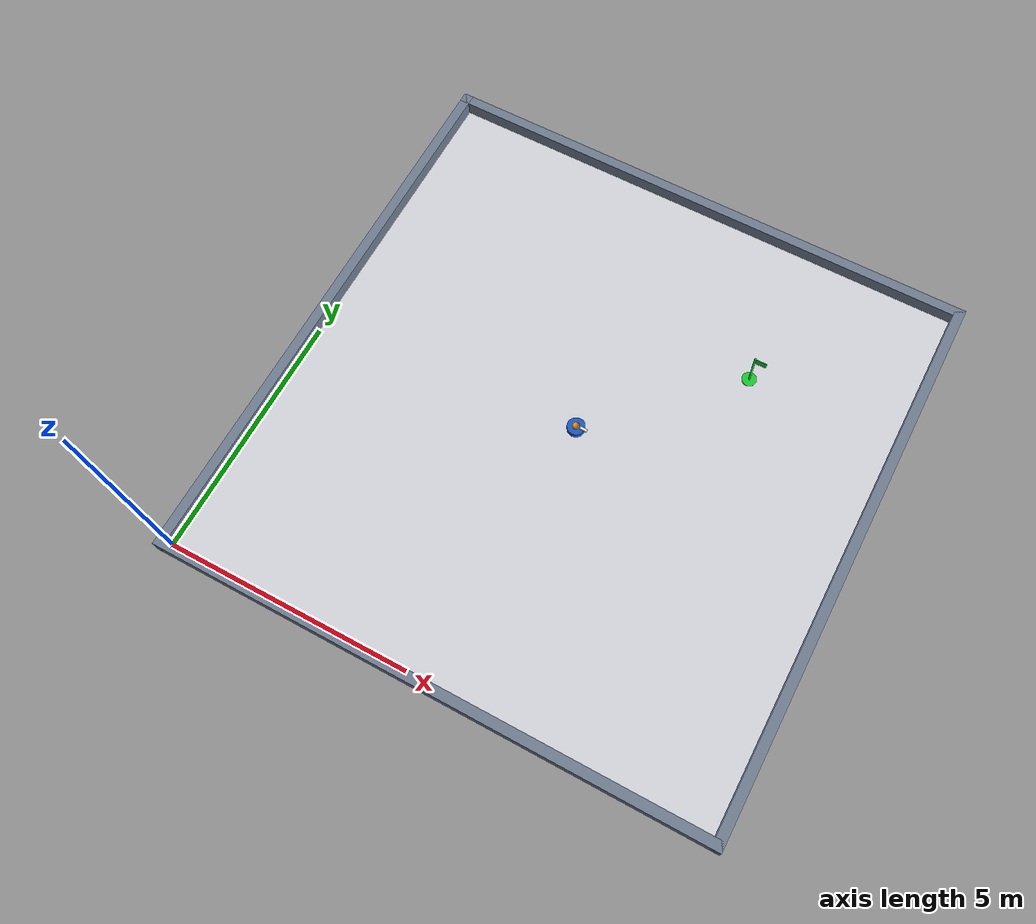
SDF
<?xml version="1.0" ?>
<sdf version="1.10">
  <world name="arena">
    <physics name="default_physics" type="dartsim">
      <max_step_size>0.01</max_step_size>
      <real_time_factor>1.0</real_time_factor>
    </physics>

    <plugin filename="gz-sim-physics-system"
            name="gz::sim::systems::Physics"/>
    <plugin filename="gz-sim-user-commands-system"
            name="gz::sim::systems::UserCommands"/>
    <plugin filename="gz-sim-scene-broadcaster-system"
            name="gz::sim::systems::SceneBroadcaster"/>

    <scene>
      <ambient>0.9 0.9 0.9 1</ambient>
      <background>0.35 0.45 0.55 1</background>
      <grid>false</grid>
    </scene>

    <light type="directional" name="sun">
      <cast_shadows>true</cast_shadows>
      <pose>5.5 5.5 12 0 0 0</pose>
      <diffuse>0.9 0.9 0.9 1</diffuse>
      <specular>0.2 0.2 0.2 1</specular>
      <direction>-0.3 0.2 -0.9</direction>
    </light>

    <!-- arena floor -->
    <model name="floor">
      <static>true</static>
      <pose>5.5 5.5 0 0 0 0</pose>
      <link name="link">
        <visual name="visual">
          <geometry>
            <box><size>11 11 0.05</size></box>
          </geometry>
          <material>
            <ambient>0.85 0.85 0.88 1</ambient>
            <diffuse>0.85 0.85 0.88 1</diffuse>
          </material>
        </visual>
        <collision name="collision">
          <geometry>
            <box><size>11 11 0.05</size></box>
          </geometry>
        </collision>
      </link>
    </model>

    <!-- arena walls -->
    <model name="wall_north">
      <static>true</static>
      <pose>5.5 11.1 0.15 0 0 0</pose>
      <link name="link">
        <visual name="visual">
          <geometry><box><size>11.4 0.2 0.35</size></box></geometry>
          <material>
            <ambient>0.45 0.5 0.58 1</ambient>
            <diffuse>0.45 0.5 0.58 1</diffuse>
          </material>
        </visual>
      </link>
    </model>
    <model name="wall_south">
      <static>true</static>
      <pose>5.5 -0.1 0.15 0 0 0</pose>
      <link name="link">
        <visual name="visual">
          <geometry><box><size>11.4 0.2 0.35</size></box></geometry>
          <material>
            <ambient>0.45 0.5 0.58 1</ambient>
            <diffuse>0.45 0.5 0.58 1</diffuse>
          </material>
        </visual>
      </link>
    </model>
    <model name="wall_east">
      <static>true</static>
      <pose>11.1 5.5 0.15 0 0 0</pose>
      <link name="link">
        <visual name="visual">
          <geometry><box><size>0.2 11.4 0.35</size></box></geometry>
          <material>
            <ambient>0.45 0.5 0.58 1</ambient>
            <diffuse>0.45 0.5 0.58 1</diffuse>
          </material>
        </visual>
      </link>
    </model>
    <model name="wall_west">
      <static>true</static>
      <pose>-0.1 5.5 0.15 0 0 0</pose>
      <link name="link">
        <visual name="visual">
          <geometry><box><size>0.2 11.4 0.35</size></box></geometry>
          <material>
            <ambient>0.45 0.5 0.58 1</ambient>
            <diffuse>0.45 0.5 0.58 1</diffuse>
          </material>
        </visual>
      </link>
    </model>

    <!-- goal marker: green disc, radius = GOAL_TOL from simulator.py -->
    <model name="goal">
      <static>true</static>
      <pose>8 8 0.03 0 0 0</pose>
      <link name="link">
        <visual name="disc">
          <geometry><cylinder><radius>0.15</radius><length>0.02</length></cylinder></geometry>
          <material>
            <ambient>0.1 0.8 0.2 1</ambient>
            <diffuse>0.1 0.8 0.2 1</diffuse>
            <emissive>0.05 0.4 0.1 1</emissive>
          </material>
        </visual>
        <visual name="pole">
          <pose>0 0 0.45 0 0 0</pose>
          <geometry><cylinder><radius>0.02</radius><length>0.9</length></cylinder></geometry>
          <material>
            <ambient>0.1 0.8 0.2 1</ambient>
            <diffuse>0.1 0.8 0.2 1</diffuse>
          </material>
        </visual>
        <visual name="flag">
          <pose>0.12 0 0.8 0 0 0</pose>
          <geometry><box><size>0.24 0.01 0.16</size></box></geometry>
          <material>
            <ambient>0.1 0.8 0.2 1</ambient>
            <diffuse>0.1 0.8 0.2 1</diffuse>
            <emissive>0.05 0.4 0.1 1</emissive>
          </material>
        </visual>
      </link>
    </model>

    <!-- robot: visual-only unicycle, pose driven via /world/arena/set_pose -->
    <model name="robot">
      <pose>5.5 5.5 0.09 0 0 0</pose>
      <link name="chassis">
        <gravity>false</gravity>
        <visual name="body">
          <geometry><cylinder><radius>0.18</radius><length>0.12</length></cylinder></geometry>
          <material>
            <ambient>0.12 0.35 0.75 1</ambient>
            <diffuse>0.12 0.35 0.75 1</diffuse>
          </material>
        </visual>
        <visual name="nose">
          <pose>0.16 0 0.075 0 0 0</pose>
          <geometry><box><size>0.14 0.05 0.04</size></box></geometry>
          <material>
            <ambient>0.95 0.95 0.95 1</ambient>
            <diffuse>0.95 0.95 0.95 1</diffuse>
            <emissive>0.3 0.3 0.3 1</emissive>
          </material>
        </visual>
        <visual name="dome">
          <pose>0 0 0.08 0 0 0</pose>
          <geometry><sphere><radius>0.07</radius></sphere></geometry>
          <material>
            <ambient>0.9 0.55 0.1 1</ambient>
            <diffuse>0.9 0.55 0.1 1</diffuse>
          </material>
        </visual>
      </link>
    </model>

    <gui fullscreen="0">
      <plugin filename="MinimalScene" name="3D View">
        <gz-gui>
          <title>3D View</title>
          <property type="bool" key="showTitleBar">false</property>
          <property type="string" key="state">docked</property>
        </gz-gui>
        <engine>ogre2</engine>
        <scene>scene</scene>
        <ambient_light>0.6 0.6 0.6</ambient_light>
        <background_color>0.35 0.45 0.55</background_color>
        <camera_pose>5.5 -4.5 12 0 0.85 1.5708</camera_pose>
      </plugin>
      <plugin filename="GzSceneManager" name="Scene Manager">
        <gz-gui>
          <property key="state" type="string">floating</property>
          <property key="width" type="double">5</property>
          <property key="height" type="double">5</property>
          <property key="showTitleBar" type="bool">false</property>
        </gz-gui>
      </plugin>
      <plugin filename="InteractiveViewControl" name="Interactive view control">
        <gz-gui>
          <property key="state" type="string">floating</property>
          <property key="width" type="double">5</property>
          <property key="height" type="double">5</property>
          <property key="showTitleBar" type="bool">false</property>
        </gz-gui>
      </plugin>
      <plugin filename="WorldControl" name="World control">
        <gz-gui>
          <title>World control</title>
          <property type="bool" key="showTitleBar">false</property>
          <property type="bool" key="resizable">false</property>
          <property type="double" key="height">72</property>
          <property type="double" key="width">121</property>
          <property type="double" key="z">1</property>
          <property type="string" key="state">standalone</property>
          <anchors target="3D View">
            <line own="left" target="left"/>
            <line own="bottom" target="bottom"/>
          </anchors>
        </gz-gui>
        <play_pause>true</play_pause>
        <step>true</step>
        <start_paused>false</start_paused>
      </plugin>
      <plugin filename="WorldStats" name="World stats">
        <gz-gui>
          <title>World stats</title>
          <property type="bool" key="showTitleBar">false</property>
          <property type="bool" key="resizable">false</property>
          <property type="double" key="height">110</property>
          <property type="double" key="width">290</property>
          <property type="double" key="z">1</property>
          <property type="string" key="state">standalone</property>
          <anchors target="3D View">
            <line own="right" target="right"/>
            <line own="bottom" target="bottom"/>
          </anchors>
        </gz-gui>
        <sim_time>true</sim_time>
        <real_time>true</real_time>
        <real_time_factor>true</real_time_factor>
        <iterations>true</iterations>
      </plugin>
    </gui>
  </world>
</sdf>
